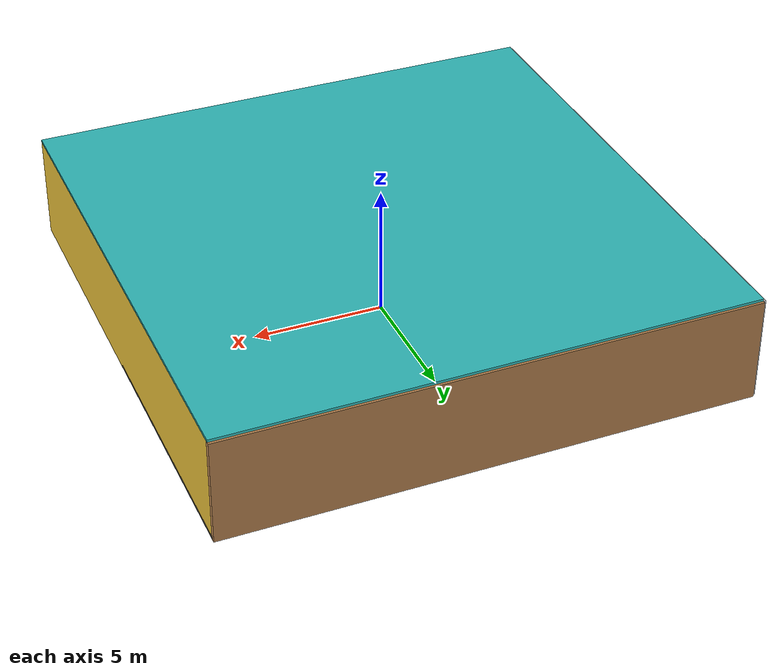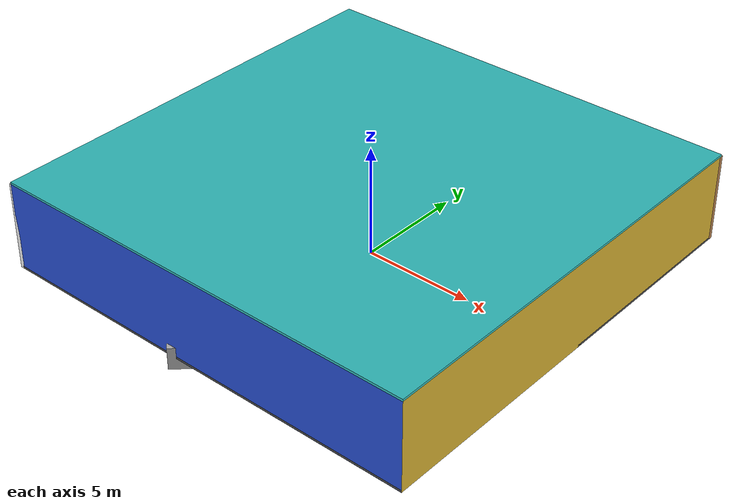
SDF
<sdf version="1.4">
 <world name="default">
  <physics type="ode">
   <max_step_size>0.001</max_step_size>
   <real_time_factor>1</real_time_factor>
   <real_time_update_rate>1000</real_time_update_rate>
   <gravity>0 0 -9.8</gravity>
  </physics>
  <scene><ambient>0.4 0.4 0.4 1</ambient><background>0.7 0.7 0.7 1</background><shadows>1</shadows></scene>
  <model name="Surrounding">
   <static>1</static>
   <link name="Ceiling">
    <collision name="Ceiling_Collision"><geometry><box><size>20 20 0.1</size></box></geometry></collision>
    <visual name="Ceiling_Visual">
     <geometry><box><size>20 20 0.1</size></box></geometry>
     <material>
      <script><uri>file://media/materials/scripts/gazebo.material</uri><name>Gazebo/TurquoiseGlow</name></script>
     </material>
    </visual>
    <pose>0 0 4.05 0 0 0</pose>
   </link>
   <link name="Wall_South">
    <collision name="Wall_South_Collision">
     <geometry><box><size>20 0 4</size></box></geometry>
     <pose>0 0 2 0 -0 0</pose>
    </collision>
    <visual name="Wall_South_Visual">
     <pose>0 0 2 0 -0 0</pose>
     <geometry><box><size>20 0 4</size></box></geometry>
     <material>
      <script><uri>file://media/materials/scripts/gazebo.material</uri><name>Gazebo/BlueGlow</name></script>
     </material>
    </visual>
    <velocity_decay><linear>0</linear><angular>0</angular></velocity_decay>
    <pose>0 -10 0 0 -0 0</pose>
   </link>
   <link name="Wall_East">
    <collision name="Wall_21_Collision">
     <geometry><box><size>20 0 4</size></box></geometry>
     <pose>0 0 2 0 -0 0</pose>
    </collision>
    <visual name="Wall_21_Visual">
     <pose>0 0 2 0 -0 0</pose>
     <geometry><box><size>20 0 4</size></box></geometry>
     <material>
      <script><uri>file://media/materials/scripts/gazebo.material</uri><name>Gazebo/Gold</name></script>
     </material>
    </visual>
    <velocity_decay><linear>0</linear><angular>0</angular></velocity_decay>
    <pose>10 0 0 0 -0 1.5708</pose>
   </link>
   <link name="Wall_North">
    <collision name="Wall_22_Collision">
     <geometry><box><size>20 0.2 4</size></box></geometry>
     <pose>0 0 2 0 -0 0</pose>
    </collision>
    <visual name="Wall_22_Visual">
     <pose>0 0 2 0 -0 0</pose>
     <geometry><box><size>20 0.2 4</size></box></geometry>
     <material>
      <script><uri>file://media/materials/scripts/gazebo.material</uri><name>Gazebo/WoodPallet</name></script>
     </material>
    </visual>
    <velocity_decay><linear>0</linear><angular>0</angular></velocity_decay>
    <pose>0 10 0 0 -0 0</pose>
   </link>
   <link name="Wall_West">
    <collision name="Wall_23_Collision">
     <geometry><box><size>20 0.2 4</size></box></geometry>
     <pose>0 0 2 0 -0 0</pose>
    </collision>
    <visual name="Wall_23_Visual">
     <pose>0 0 2 0 -0 0</pose>
     <geometry><box><size>20 0.2 4</size></box></geometry>
     <material>
      <script><uri>file://media/materials/scripts/gazebo.material</uri><name>Gazebo/WhiteGlow</name></script>
     </material>
    </visual>
    <velocity_decay><linear>0</linear><angular>0</angular></velocity_decay>
    <pose>-10 0 0 0 0 -1.5708</pose>
   </link>
   <link name="Ground_link">
    <collision name="collision">
     <pose>0 0 .05 0 -0 0</pose>
     <geometry><box><size>20 20 0.1</size></box></geometry>
    </collision>
    <visual name="visual">
     <pose>0 0 .05 0 -0 0</pose>
     <geometry><box><size>20 20 0.1</size></box></geometry>
     <material>
      <script><uri>file://media/materials/scripts/gazebo.material</uri><name>Gazebo/DarkGrey</name></script>
     </material>
    </visual>
   </link>
   <static>1</static>
  </model>
  <spherical_coordinates>
   <surface_model>EARTH_WGS84</surface_model>
   <latitude_deg>0</latitude_deg>
   <longitude_deg>0</longitude_deg>
   <elevation>0</elevation>
   <heading_deg>0</heading_deg>
  </spherical_coordinates>
  <light name="lightball_0" type="diffuse">
   <diffuse>0.8 0.8 0.8 1</diffuse>
   <specular>0.2 0.2 0.2 1</specular>
   <attenuation>
    <range>100</range>
    <constant>0.7</constant>
    <linear>0.01</linear>
    <quadratic>0.001</quadratic>
   </attenuation>
   <direction>-0.5 0.1 -0.9</direction>
   <pose>3.07500743061 -6.965300938 3.19523686813 0 0 0</pose>
  </light>
  <light name="lightball_1" type="diffuse">
   <diffuse>0.8 0.8 0.8 1</diffuse>
   <specular>0.2 0.2 0.2 1</specular>
   <attenuation>
    <range>100</range>
    <constant>0.7</constant>
    <linear>0.01</linear>
    <quadratic>0.001</quadratic>
   </attenuation>
   <direction>-0.5 0.1 -0.9</direction>
   <pose>5.49429346525 3.54779774566 1.52699435001 0 0 0</pose>
  </light>
  <include><uri>model://table</uri><pose>-4.05915475141 -3.60016889417 0 0 0 1.38662597764</pose></include>
  <include><uri>model://table</uri><pose>-5.35903890364 4.53762059122 0 0 0 0.575794968481</pose></include>
  <include><uri>model://table</uri><pose>-4.83574469061 6.50279396862 0 0 0 2.31302859569</pose></include>
  <include>
   <uri>model://textured_shapes</uri>
   <pose>-2.29050325036 -8.45934035321 0 0 0 0.775593205071</pose>
  </include>
  <include><uri>model://table</uri><pose>-2.08029032425 -1.46996490454 0 0 0 0.637095646774</pose></include>
  <include><uri>model://table</uri><pose>1.13475438507 -8.18991156595 0 0 0 0.845619802026</pose></include>
  <include><uri>model://cabinet</uri><pose>4.47154214084 -4.80307192041 0 0 0 1.09077582927</pose></include>
  <include><uri>model://cabinet</uri><pose>3.62928208132 6.5234515298 0 0 0 0.960246551451</pose></include>
  <include><uri>model://cabinet</uri><pose>6.438232333 0.510170619751 0 0 0 1.28909479538</pose></include>
 </world>
</sdf>

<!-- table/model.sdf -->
<sdf version="1.5">
  <model name="table">
    <static>true</static>
    <link name="link">
      <collision name="surface">
        <pose>0 0 1.0 0 0 0</pose>
        <geometry>
          <box>
            <size>1.5 0.8 0.03</size>
          </box>
        </geometry>
        <surface>
          <friction>
            <ode>
              <mu>0.6</mu>
              <mu2>0.6</mu2>
            </ode>
          </friction>
        </surface>
      </collision>
      <visual name="visual1">
        <pose>0 0 1.0 0 0 0</pose>
        <geometry>
          <box>
            <size>1.5 0.8 0.03</size>
          </box>
        </geometry>
        <material>
          <script>
            <uri>model://media/materials/scripts/gazebo.material</uri>
            <name>Gazebo/Wood</name>
          </script>
        </material>
      </visual>
      <collision name="front_left_leg">
        <pose>0.68 0.38 0.5 0 0 0</pose>
        <geometry>
          <cylinder>
            <radius>0.02</radius>
            <length>1.0</length>
          </cylinder>
        </geometry>
      </collision>
      <visual name="front_left_leg">
        <pose>0.68 0.38 0.5 0 0 0</pose>
        <geometry>
          <cylinder>
            <radius>0.02</radius>
            <length>1.0</length>
          </cylinder>
        </geometry>
        <material>
          <script>
            <uri>model://media/materials/scripts/gazebo.material</uri>
            <name>Gazebo/Grey</name>
          </script>
        </material>
      </visual>
      <collision name="front_right_leg">
        <pose>0.68 -0.38 0.5 0 0 0</pose>
        <geometry>
          <cylinder>
            <radius>0.02</radius>
            <length>1.0</length>
          </cylinder>
        </geometry>
      </collision>
      <visual name="front_right_leg">
        <pose>0.68 -0.38 0.5 0 0 0</pose>
        <geometry>
          <cylinder>
            <radius>0.02</radius>
            <length>1.0</length>
          </cylinder>
        </geometry>
        <material>
          <script>
            <uri>model://media/materials/scripts/gazebo.material</uri>
            <name>Gazebo/Grey</name>
          </script>
        </material>
      </visual>
      <collision name="back_right_leg">
        <pose>-0.68 -0.38 0.5 0 0 0</pose>
        <geometry>
          <cylinder>
            <radius>0.02</radius>
            <length>1.0</length>
          </cylinder>
        </geometry>
      </collision>
      <visual name="back_right_leg">
        <pose>-0.68 -0.38 0.5 0 0 0</pose>
        <geometry>
          <cylinder>
            <radius>0.02</radius>
            <length>1.0</length>
          </cylinder>
        </geometry>
        <material>
          <script>
            <uri>model://media/materials/scripts/gazebo.material</uri>
            <name>Gazebo/Grey</name>
          </script>
        </material>
      </visual>
      <collision name="back_left_leg">
        <pose>-0.68 0.38 0.5 0 0 0</pose>
        <geometry>
          <cylinder>
            <radius>0.02</radius>
            <length>1.0</length>
          </cylinder>
        </geometry>
      </collision>
      <visual name="back_left_leg">
        <pose>-0.68 0.38 0.5 0 0 0</pose>
        <geometry>
          <cylinder>
            <radius>0.02</radius>
            <length>1.0</length>
          </cylinder>
        </geometry>
        <material>
          <script>
            <uri>model://media/materials/scripts/gazebo.material</uri>
            <name>Gazebo/Grey</name>
          </script>
        </material>
      </visual>
    </link>
  </model>
</sdf>

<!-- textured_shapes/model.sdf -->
<sdf version="1.6">
  <model name="textured_shapes">
    <pose>0 0 0.5 0 0 0</pose>
    <link name="box">
      <pose>0 -1.5 0 0 0 0</pose>
      <collision name="collision">
        <geometry>
          <box>
            <size>1 1 1</size>
          </box>
        </geometry>
      </collision>
      <visual name="visual">
        <geometry>
          <box>
            <size>1 1 1</size>
          </box>
        </geometry>
        <material>
          <script>
            <uri>model://../model_source/models/textured_shapes/materials/scripts</uri>
            <uri>model://../model_source/models/textured_shapes/materials/textures</uri>
            <name>TexturedShape/Squares</name>
          </script>
        </material>
      </visual>
    </link>
    <link name="sphere">
      <collision name="collision">
        <geometry>
          <sphere>
            <radius>0.5</radius>
          </sphere>
        </geometry>
      </collision>
      <visual name="visual">
        <geometry>
          <sphere>
            <radius>0.5</radius>
          </sphere>
        </geometry>
        <material>
          <script>
            <uri>model://../model_source/models/textured_shapes/materials/scripts</uri>
            <uri>model://../model_source/models/textured_shapes/materials/textures</uri>
            <name>TexturedShape/Squares</name>
          </script>
        </material>
      </visual>
    </link>
    <link name="cylinder">
      <pose>0 1.5 0 0 0 0</pose>
      <collision name="collision">
        <geometry>
          <cylinder>
            <radius>0.5</radius>
            <length>1</length>
          </cylinder>
        </geometry>
      </collision>
      <visual name="visual">
        <geometry>
          <cylinder>
            <radius>0.5</radius>
            <length>1</length>
          </cylinder>
        </geometry>
        <material>
          <script>
            <uri>model://../model_source/models/textured_shapes/materials/scripts</uri>
            <uri>model://../model_source/models/textured_shapes/materials/textures</uri>
            <name>TexturedShape/Squares</name>
          </script>
        </material>
      </visual>
    </link>
  </model>
</sdf>

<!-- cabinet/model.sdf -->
<sdf version="1.5">
  <model name="cabinet">
    <static>true</static>
    <link name="cabinet_bottom_plate">
      <inertial>
        <pose>0 0 -1 0 0 0</pose>
        <inertia>
          <ixx>2.050000</ixx>
          <ixy>0</ixy>
          <ixz>0</ixz>
          <iyy>2.050000</iyy>
          <iyz>0</iyz>
          <izz>2.050000</izz>
        </inertia>
        <mass>25.000000</mass>
      </inertial>
      <collision name="cabinet_bottom_plate_geom">
        <pose>0 0 0.010000 0 0 0</pose>
        <geometry>
          <box>
            <size>0.450000 0.450000 0.020000</size>
          </box>
        </geometry>
      </collision>
      <visual name="cabinet_bottom_plate_geom_visual">
        <pose>0 0 0.010000 0 0 0</pose>
        <geometry>
          <box>
            <size>0.450000 0.450000 0.020000</size>
          </box>
        </geometry>
        <material>
          <script>
            <uri>model://media/materials/scripts/gazebo.material</uri>
            <name>Gazebo/Wood</name>
          </script>
        </material>
      </visual>
      <collision name="cabinet_bottom_plate_geom_cabinet_back_plate">
        <pose>0.235000 0 0.510000 0 0 0</pose>
        <geometry>
          <box>
            <size>0.020000 0.450000 1.020000</size>
          </box>
        </geometry>
      </collision>
      <visual name="cabinet_bottom_plate_geom_cabinet_back_plate_visual">
        <pose>0.235000 0 0.510000 0 0 0</pose>
        <geometry>
          <box>
            <size>0.020000 0.450000 1.020000</size>
          </box>
        </geometry>
        <material>
          <script>
            <uri>model://media/materials/scripts/gazebo.material</uri>
            <name>Gazebo/Wood</name>
          </script>
        </material>
      </visual>
      <collision name="cabinet_bottom_plate_geom_cabinet_left_plate">
        <pose>0 0.235000 0.510000 0 0 0</pose>
        <geometry>
          <box>
            <size>0.450000 0.020000 1.020000</size>
          </box>
        </geometry>
      </collision>
      <visual name="cabinet_bottom_plate_geom_cabinet_left_plate_visual">
        <pose>0 0.235000 0.510000 0 0 0</pose>
        <geometry>
          <box>
            <size>0.450000 0.020000 1.020000</size>
          </box>
        </geometry>
        <material>
          <script>
            <uri>model://media/materials/scripts/gazebo.material</uri>
            <name>Gazebo/Wood</name>
          </script>
        </material>
      </visual>
      <collision name="cabinet_bottom_plate_geom_cabinet_middle_plate">
        <pose>0 0 0.510000 0 0 0</pose>
        <geometry>
          <box>
            <size>0.450000 0.450000 0.020000</size>
          </box>
        </geometry>
      </collision>
      <visual name="cabinet_bottom_plate_geom_cabinet_middle_plate_visual">
        <pose>0 0 0.510000 0 0 0</pose>
        <geometry>
          <box>
            <size>0.450000 0.450000 0.020000</size>
          </box>
        </geometry>
        <material>
          <script>
            <uri>model://media/materials/scripts/gazebo.material</uri>
            <name>Gazebo/Wood</name>
          </script>
        </material>
      </visual>
      <collision name="cabinet_bottom_plate_geom_cabinet_right_plate">
        <pose>0 -0.235000 0.510000 0 0 0</pose>
        <geometry>
          <box>
            <size>0.450000 0.020000 1.020000</size>
          </box>
        </geometry>
      </collision>
      <visual name="cabinet_bottom_plate_geom_cabinet_right_plate_visual">
        <pose>0 -0.235000 0.510000 0 0 0</pose>
        <geometry>
          <box>
            <size>0.450000 0.020000 1.020000</size>
          </box>
        </geometry>
        <material>
          <script>
            <uri>model://media/materials/scripts/gazebo.material</uri>
            <name>Gazebo/Wood</name>
          </script>
        </material>
      </visual>
      <collision name="cabinet_bottom_plate_geom_cabinet_top_plate">
        <pose>0 0 1.010000 0 0 0</pose>
        <geometry>
          <box>
            <size>0.450000 0.450000 0.020000</size>
          </box>
        </geometry>
      </collision>
      <visual name="cabinet_bottom_plate_geom_cabinet_top_plate_visual">
        <pose>0 0 1.010000 0 0 0</pose>
        <geometry>
          <box>
            <size>0.450000 0.450000 0.020000</size>
          </box>
        </geometry>
        <material>
          <script>
            <uri>model://media/materials/scripts/gazebo.material</uri>
            <name>Gazebo/Wood</name>
          </script>
        </material>
      </visual>
    </link>
  </model>
</sdf>
